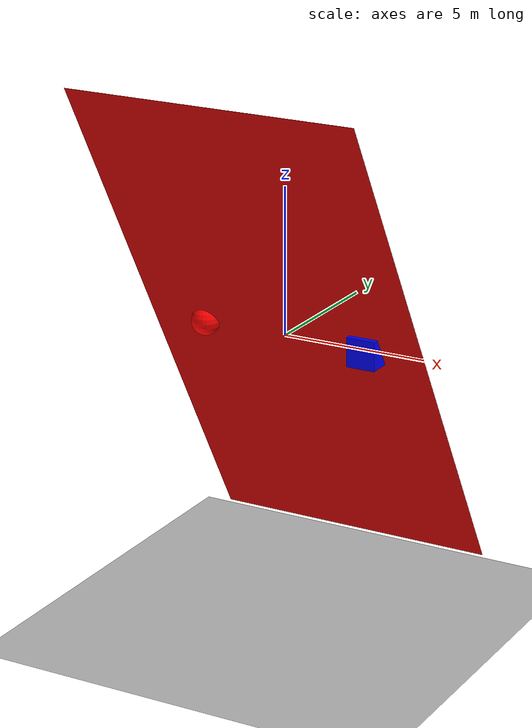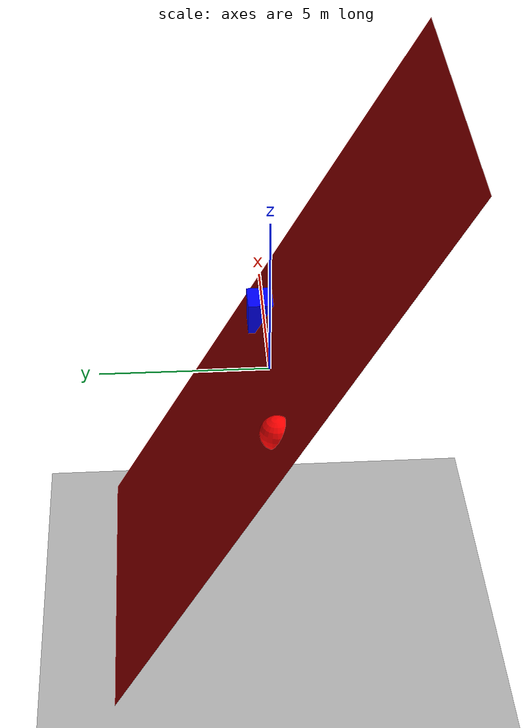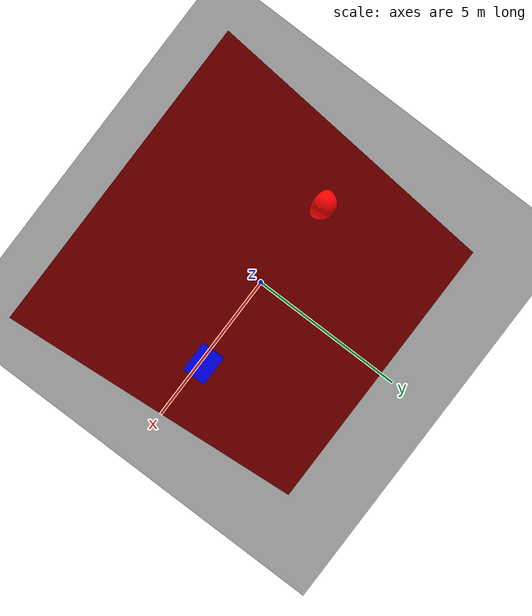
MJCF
<mujoco>
  <option gravity="0 0 -9.81" />
  <worldbody>
    <light diffuse="0.5 0.5 0.5" pos="0 0 3" dir="0 0 -1" />
    <body name="object_4" pos="0 0 0">
      <geom type="plane" size="5 10 0.1" rgba="0.7 0 0 1" friction="0.2 0.2 0.2" quat="0.5 0.86 0 0" />
    </body>
    <body name="object_5" pos="-10 0 -10">
      <geom type="plane" size="30 30 0.1" rgba="0.7 0.7 0.7 1" friction="1 1 1" />
    </body>
    <body name="object_3" pos="0 0 -5">
      <geom type="plane" size="20 20 0.1" rgba="0.5 0.5 0.5 1" friction="0.5 0.5 0.5" />
    </body>
    <body name="object_1" pos="-3 0 0">
      <geom type="sphere" size="0.5" density="1" rgba="1 0 0 1" />
      <joint name="object_1_joint" type="free" />
    </body>
    <body name="object_2" pos="3 0 0">
      <geom type="box" size="0.5 0.5 0.5" density="1" rgba="0 0 1 1" />
      <joint name="object_2_joint" type="free" />
    </body>
  </worldbody>
</mujoco>
